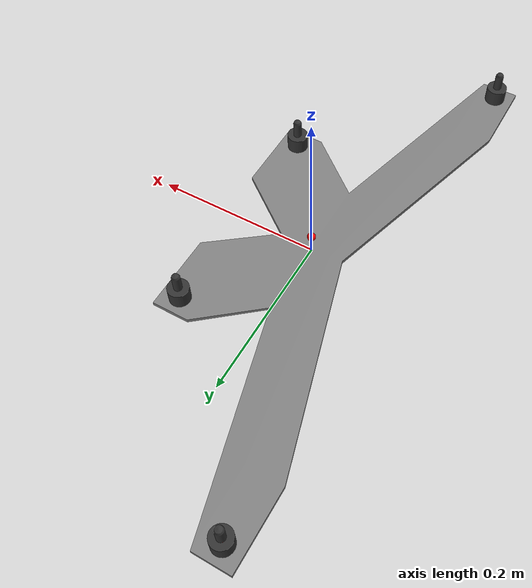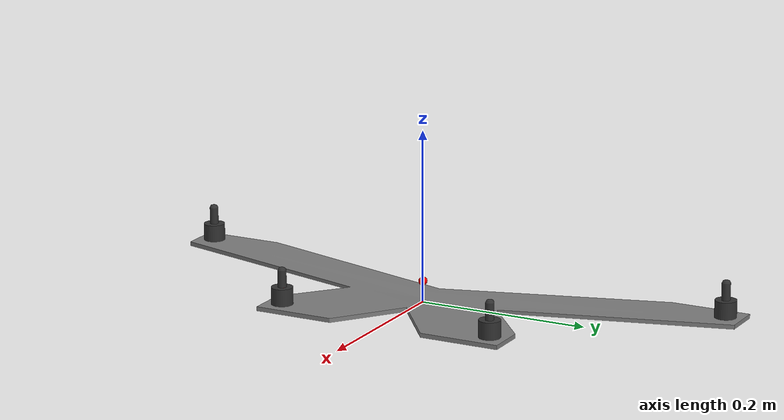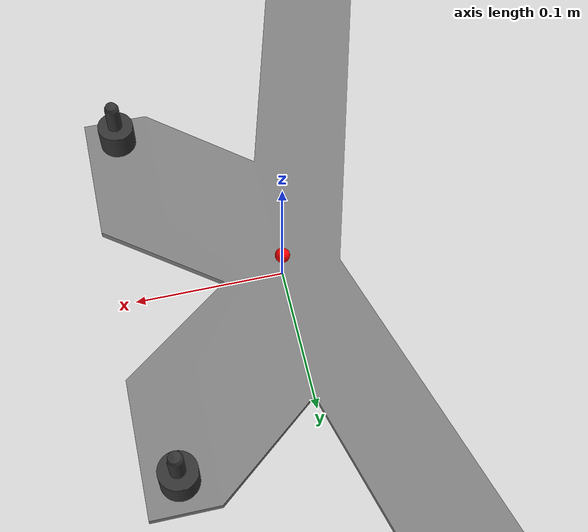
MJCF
<mujoco model="peg">
    <asset>
        <mesh name="dual_peg_base"    file="quad_peg_base.stl" />
        <mesh name="dual_peg_pin_a"   file="../dual_pegs/pin_a.stl" />
        <mesh name="dual_peg_stand_a" file="../dual_pegs/stand_a.stl" />
        <mesh name="dual_peg_pin_b"   file="../dual_pegs/pin_b.stl" />
        <mesh name="dual_peg_stand_b" file="../dual_pegs/stand_b.stl" />

        <material name="black" specular="1" shininess="0.5" reflectance="1" emission="0.1"  rgba="0.2 0.2 0.2 1"/>
        <material name="grey" specular="1" shininess="0.5" reflectance="1" emission="0.1" rgba="0.5 0.5 0.5 1"/>
    </asset>

    <worldbody>
        <body>
            <body name="object">
                <inertial pos="0 0 0" mass="100.0" diaginertia="10 10 10"/>

                <geom name="dual_peg_base" type="mesh" mesh="dual_peg_base" pos="0 0 0.05" material="grey"
                      solimp="0.998 0.998 0.001" solref="0.001 1" density="100" friction="0.95 0.3 0.1"
                      group="0" condim="4"/>
                <geom name="dual_peg_pin_a" type="mesh" mesh="dual_peg_pin_a" pos="0 0.13 0" material="black"
                      solimp="0.998 0.998 0.001" solref="0.001 1" density="100" friction="0.95 0.3 0.1"
                      group="0" condim="4"/>
                <geom name="dual_peg_stand_a" type="mesh" mesh="dual_peg_stand_a" pos="0 0.13 0" material="black"
                      solimp="0.998 0.998 0.001" solref="0.001 1" density="100" friction="0.95 0.3 0.1"
                      group="0" condim="4"/>
                <geom name="dual_peg_pin_b" type="mesh" mesh="dual_peg_pin_b" pos="0 -0.33 0" material="black"
                      solimp="0.998 0.998 0.001" solref="0.001 1" density="100" friction="0.95 0.3 0.1"
                      group="0" condim="4"/>
                <geom name="dual_peg_stand_b" type="mesh" mesh="dual_peg_stand_b" pos="0 -0.33 0" material="black"
                      solimp="0.998 0.998 0.001" solref="0.001 1" density="100" friction="0.95 0.3 0.1"
                      group="0" condim="4"/>
                <geom name="dual_peg_pin_c" type="mesh" mesh="dual_peg_pin_a" pos="0 0.33 0" quat="0 0 0 0.707108"
                      material="black" solimp="0.998 0.998 0.001" solref="0.001 1" density="100" friction="0.95 0.3 0.1"
                      group="0" condim="4"/>
                <geom name="dual_peg_stand_c" type="mesh" mesh="dual_peg_stand_a" pos="0 0.33 0" quat="0 0 0 0.707108"
                      material="black" solimp="0.998 0.998 0.001" solref="0.001 1" density="100" friction="0.95 0.3 0.1"
                      group="0" condim="4"/>
                <geom name="dual_peg_pin_d" type="mesh" mesh="dual_peg_pin_b" pos="0 -0.13 0" quat="0 0 0 0.707108"
                      material="black" solimp="0.998 0.998 0.001" solref="0.001 1" density="100" friction="0.95 0.3 0.1"
                      group="0" condim="4"/>
                <geom name="dual_peg_stand_d" type="mesh" mesh="dual_peg_stand_b" pos="0 -0.13 0" quat="0 0 0 0.707108"
                      material="black" solimp="0.998 0.998 0.001" solref="0.001 1" density="100" friction="0.95 0.3 0.1"
                      group="0" condim="4"/>

                <site name="target_site" rgba="1 0 0 1" size="0.005" pos="0 0 0.025"/>

                <site rgba="1 0 0 1" size="0.005" pos="0.0925 0.13 0.025" name="flap_a_peg_site"/>
                <site rgba="1 0 0 1" size="0.005" pos="0.0925 -0.13 0.025" name="flap_b_peg_site"/>
                <site rgba="1 0 0 1" size="0.005" pos="-0.0925 0.33 0.025" name="flap_c_peg_site"/>
                <site rgba="1 0 0 1" size="0.005" pos="-0.0925 -0.33 0.025" name="flap_d_peg_site"/>
            </body>
            <site rgba="0 0 0 0" size="0.005" pos="0 0 0" name="bottom_site"/>
            <site rgba="0 0 0 0" size="0.005" pos="0 0 0.05" name="top_site"/>
            <site rgba="0 0 0 0" size="0.005" pos="0.37 0 0" name="horizontal_radius_site"/>
        </body>
    </worldbody>
</mujoco>
